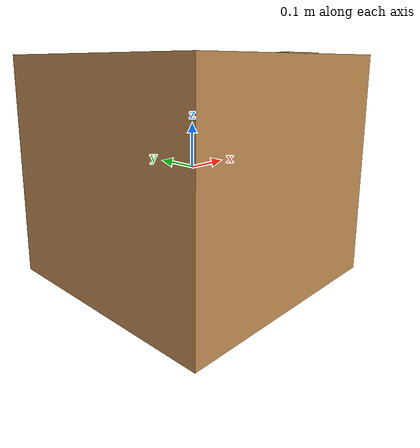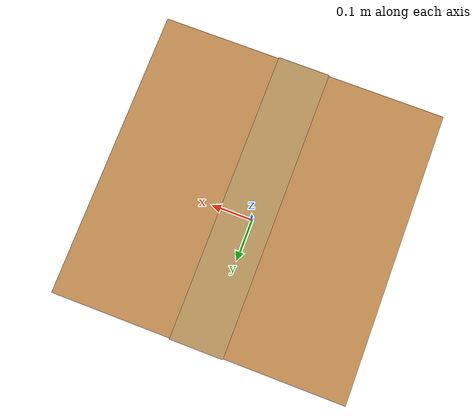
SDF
<?xml version="1.0"?>
<sdf version="1.9">
  <model name="cargo_box">
    <link name="link">
      <inertial><mass>3</mass></inertial>
      <collision name="collision"><geometry><box><size>0.55 0.55 0.50</size></box></geometry></collision>
      <visual name="cardboard"><geometry><box><size>0.55 0.55 0.50</size></box></geometry><material><diffuse>0.76 0.55 0.32 1</diffuse><pbr><metal><albedo_map>model://cargo_box/materials/textures/cardboard.png</albedo_map></metal></pbr><texrepeat>1.2 1.2</texrepeat></material></visual>
      <visual name="tape_x"><pose>0 0 0.2505 0 0 0</pose><geometry><box><size>0.10 0.553 0.002</size></box></geometry><material><diffuse>0.72 0.58 0.36 1</diffuse></material></visual>
      <visual name="label"><pose>0.2755 -0.08 0.04 0 1.5708 0</pose><geometry><box><size>0.16 0.22 0.002</size></box></geometry><material><diffuse>0.93 0.94 0.95 1</diffuse></material></visual>
    </link>
  </model>
</sdf>
